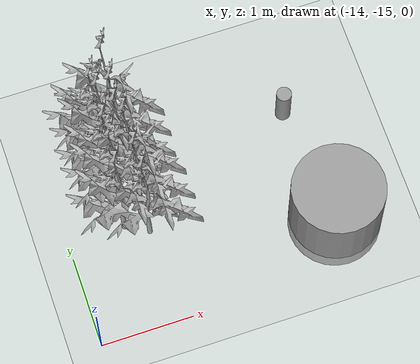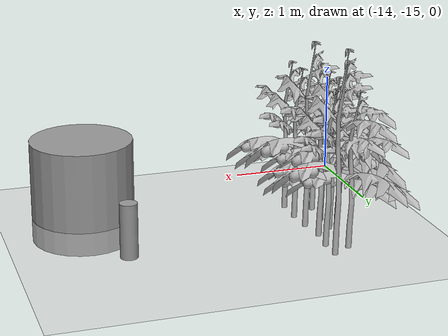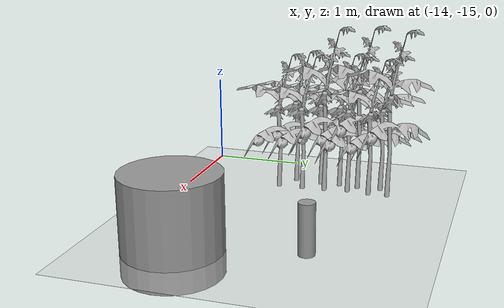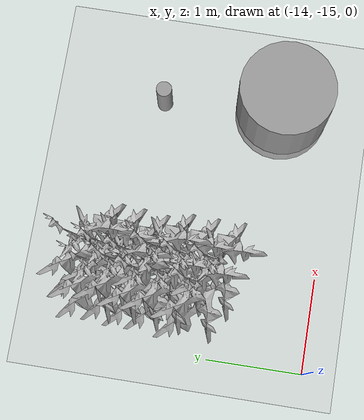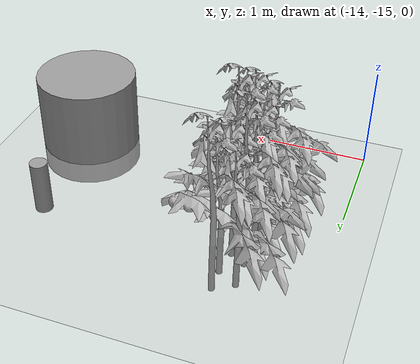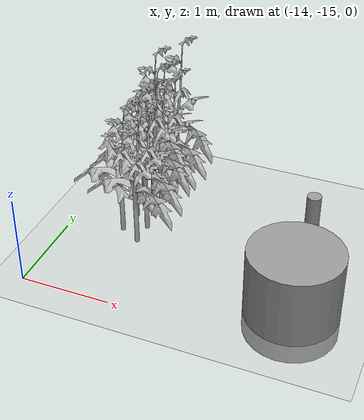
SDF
<sdf version="1.6">
 <world name="default">
  <model name="ground_plane">
   <static>1</static>
   <link name="link">
    <collision name="collision">
     <geometry><plane><normal>0 0 1</normal><size>100 100</size></plane></geometry>
     <surface>
      <contact><collide_bitmask>65535</collide_bitmask></contact>
      <friction><ode><mu>100</mu><mu2>50</mu2></ode></friction>
     </surface>
    </collision>
    <visual name="visual">
     <cast_shadows>0</cast_shadows>
     <geometry><plane><normal>0 0 1</normal><size>100 100</size></plane></geometry>
     <material>
      <script><uri>file://media/materials/scripts/gazebo.material</uri><name>Gazebo/Grey</name></script>
     </material>
    </visual>
   </link>
  </model>
  <model name="Front_Plant_1_0">
   <model name="tomato_plant_medium">
    <static>1</static>
    <link name="link">
     <collision name="collision">
      <pose>0 0 0 1.5708 -0 0</pose>
      <geometry><mesh><scale>0.5 0.5 0.5</scale><uri>model://stick/meshes/stick.dae</uri></mesh></geometry>
     </collision>
     <visual name="visual">
      <geometry>
       <mesh><scale>5e-06 5e-06 6e-06</scale><uri>model://tomato_plant_medium/meshes/tomato-plant.dae</uri></mesh>
      </geometry>
     </visual>
    </link>
    <pose>0.087453 -0.595994 0.012396 0 -0 0</pose>
   </model>
   <model name="tomato_plant_medium_0">
    <static>1</static>
    <link name="link">
     <collision name="collision">
      <pose>0 0 0 1.5708 -0 0</pose>
      <geometry><mesh><scale>0.5 0.5 0.5</scale><uri>model://stick/meshes/stick.dae</uri></mesh></geometry>
     </collision>
     <visual name="visual">
      <geometry>
       <mesh><scale>5e-06 5e-06 6e-06</scale><uri>model://tomato_plant_medium/meshes/tomato-plant.dae</uri></mesh>
      </geometry>
     </visual>
    </link>
    <pose>-0.086166 -0.251822 0.012396 0 -0 0</pose>
   </model>
   <model name="tomato_plant_medium_1">
    <static>1</static>
    <link name="link">
     <collision name="collision">
      <pose>0 0 0 1.5708 -0 0</pose>
      <geometry><mesh><scale>0.5 0.5 0.5</scale><uri>model://stick/meshes/stick.dae</uri></mesh></geometry>
     </collision>
     <visual name="visual">
      <geometry>
       <mesh><scale>5e-06 5e-06 6e-06</scale><uri>model://tomato_plant_medium/meshes/tomato-plant.dae</uri></mesh>
      </geometry>
     </visual>
    </link>
    <pose>0.080199 0.118127 0.012396 0 -0 0</pose>
   </model>
   <model name="tomato_plant_small">
    <static>1</static>
    <link name="link">
     <collision name="collision">
      <pose>0 0 0 1.5708 -0 0</pose>
      <geometry><mesh><scale>0.5 0.45 0.5</scale><uri>model://stick/meshes/stick.dae</uri></mesh></geometry>
     </collision>
     <visual name="visual">
      <geometry>
       <mesh><scale>5e-06 5e-06 5e-06</scale><uri>model://tomato_plant_small/meshes/tomato-plant.dae</uri></mesh>
      </geometry>
     </visual>
    </link>
    <pose>0.099683 -1.12011 0.012396 0 -0 0</pose>
   </model>
   <model name="tomato_plant_small_0">
    <static>1</static>
    <link name="link">
     <collision name="collision">
      <pose>0 0 0 1.5708 -0 0</pose>
      <geometry><mesh><scale>0.5 0.45 0.5</scale><uri>model://stick/meshes/stick.dae</uri></mesh></geometry>
     </collision>
     <visual name="visual">
      <geometry>
       <mesh><scale>5e-06 5e-06 5e-06</scale><uri>model://tomato_plant_small/meshes/tomato-plant.dae</uri></mesh>
      </geometry>
     </visual>
    </link>
    <pose>-0.138771 -0.983982 0.012396 0 -0 0</pose>
   </model>
   <model name="tomato_plant_small_1">
    <static>1</static>
    <link name="link">
     <collision name="collision">
      <pose>0 0 0 1.5708 -0 0</pose>
      <geometry><mesh><scale>0.5 0.45 0.5</scale><uri>model://stick/meshes/stick.dae</uri></mesh></geometry>
     </collision>
     <visual name="visual">
      <geometry>
       <mesh><scale>5e-06 5e-06 5e-06</scale><uri>model://tomato_plant_small/meshes/tomato-plant.dae</uri></mesh>
      </geometry>
     </visual>
    </link>
    <pose>0.101334 -0.848814 0.012396 0 -0 0</pose>
   </model>
   <model name="tomato_plant_small_2">
    <static>1</static>
    <link name="link">
     <collision name="collision">
      <pose>0 0 0 1.5708 -0 0</pose>
      <geometry><mesh><scale>0.5 0.45 0.5</scale><uri>model://stick/meshes/stick.dae</uri></mesh></geometry>
     </collision>
     <visual name="visual">
      <geometry>
       <mesh><scale>5e-06 5e-06 5e-06</scale><uri>model://tomato_plant_small/meshes/tomato-plant.dae</uri></mesh>
      </geometry>
     </visual>
    </link>
    <pose>-0.103369 -0.683189 0.012396 0 -0 0</pose>
   </model>
   <model name="tomato_plant_small_3">
    <static>1</static>
    <link name="link">
     <collision name="collision">
      <pose>0 0 0 1.5708 -0 0</pose>
      <geometry><mesh><scale>0.5 0.45 0.5</scale><uri>model://stick/meshes/stick.dae</uri></mesh></geometry>
     </collision>
     <visual name="visual">
      <geometry>
       <mesh><scale>5e-06 5e-06 5e-06</scale><uri>model://tomato_plant_small/meshes/tomato-plant.dae</uri></mesh>
      </geometry>
     </visual>
    </link>
    <pose>-0.104381 -0.464811 0.012396 0 -0 0</pose>
   </model>
   <model name="tomato_plant_small_4">
    <static>1</static>
    <link name="link">
     <collision name="collision">
      <pose>0 0 0 1.5708 -0 0</pose>
      <geometry><mesh><scale>0.5 0.45 0.5</scale><uri>model://stick/meshes/stick.dae</uri></mesh></geometry>
     </collision>
     <visual name="visual">
      <geometry>
       <mesh><scale>5e-06 5e-06 5e-06</scale><uri>model://tomato_plant_small/meshes/tomato-plant.dae</uri></mesh>
      </geometry>
     </visual>
    </link>
    <pose>0.055604 -0.336879 0.012396 0 -0 0</pose>
   </model>
   <model name="tomato_plant_small_5">
    <static>1</static>
    <link name="link">
     <collision name="collision">
      <pose>0 0 0 1.5708 -0 0</pose>
      <geometry><mesh><scale>0.5 0.45 0.5</scale><uri>model://stick/meshes/stick.dae</uri></mesh></geometry>
     </collision>
     <visual name="visual">
      <geometry>
       <mesh><scale>5e-06 5e-06 5e-06</scale><uri>model://tomato_plant_small/meshes/tomato-plant.dae</uri></mesh>
      </geometry>
     </visual>
    </link>
    <pose>0.085059 -0.092572 0.012396 0 -0 0</pose>
   </model>
   <model name="tomato_plant_small_6">
    <static>1</static>
    <link name="link">
     <collision name="collision">
      <pose>0 0 0 1.5708 -0 0</pose>
      <geometry><mesh><scale>0.5 0.45 0.5</scale><uri>model://stick/meshes/stick.dae</uri></mesh></geometry>
     </collision>
     <visual name="visual">
      <geometry>
       <mesh><scale>5e-06 5e-06 5e-06</scale><uri>model://tomato_plant_small/meshes/tomato-plant.dae</uri></mesh>
      </geometry>
     </visual>
    </link>
    <pose>-0.096345 0.008888 0.012396 0 -0 0</pose>
   </model>
   <static>0</static>
   <pose>-13.2256 -12.8592 0 0 -0 0</pose>
  </model>
  <model name="unit_cylinder">
   <pose>-11.2043 -14.4026 0.26731 7.9e-05 -3.7e-05 -0.002568</pose>
   <link name="link">
    <inertial>
     <mass>1</mass>
     <inertia><ixx>0.145833</ixx><ixy>0</ixy><ixz>0</ixz><iyy>0.145833</iyy><iyz>0</iyz><izz>0.125</izz></inertia>
    </inertial>
    <collision name="collision">
     <geometry><cylinder><radius>0.500003</radius><length>0.999999</length></cylinder></geometry>
    </collision>
    <visual name="visual">
     <geometry><cylinder><radius>0.500003</radius><length>0.999999</length></cylinder></geometry>
     <material>
      <script><name>Gazebo/Grey</name><uri>file://media/materials/scripts/gazebo.material</uri></script>
     </material>
    </visual>
   </link>
  </model>
  <model name="unit_cylinder_clone_0">
   <pose>-11.3509 -13.1372 0.306517 -2.6e-05 -5.9e-05 0.000183</pose>
   <link name="link">
    <inertial>
     <mass>1</mass>
     <inertia><ixx>0.145833</ixx><ixy>0</ixy><ixz>0</ixz><iyy>0.145833</iyy><iyz>0</iyz><izz>0.125</izz></inertia>
    </inertial>
    <collision name="collision">
     <geometry><cylinder><radius>0.0818595</radius><length>0.514606</length></cylinder></geometry>
    </collision>
    <visual name="visual">
     <geometry><cylinder><radius>0.0818595</radius><length>0.514606</length></cylinder></geometry>
     <material>
      <script><name>Gazebo/Grey</name><uri>file://media/materials/scripts/gazebo.material</uri></script>
     </material>
    </visual>
   </link>
  </model>
 </world>
</sdf>
